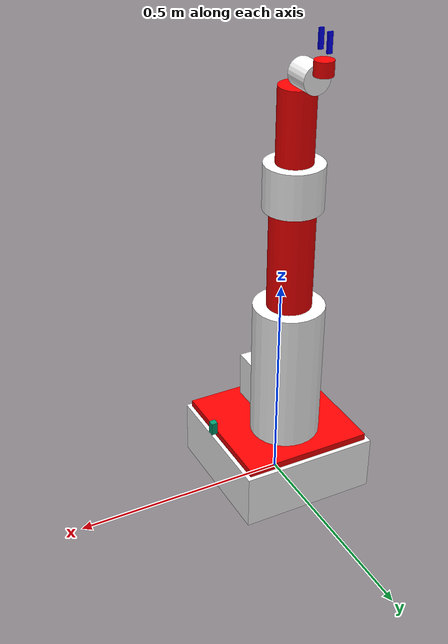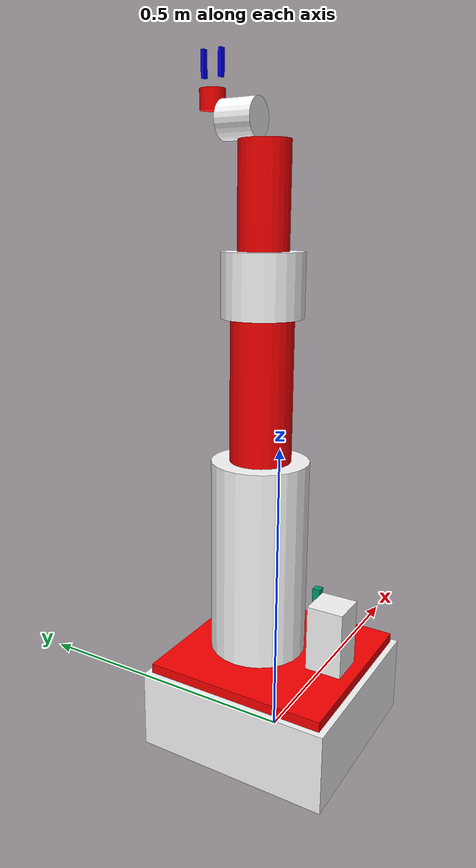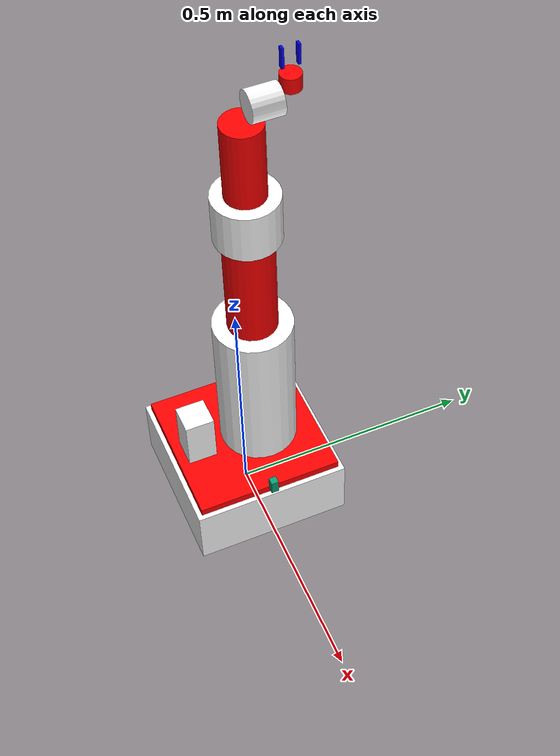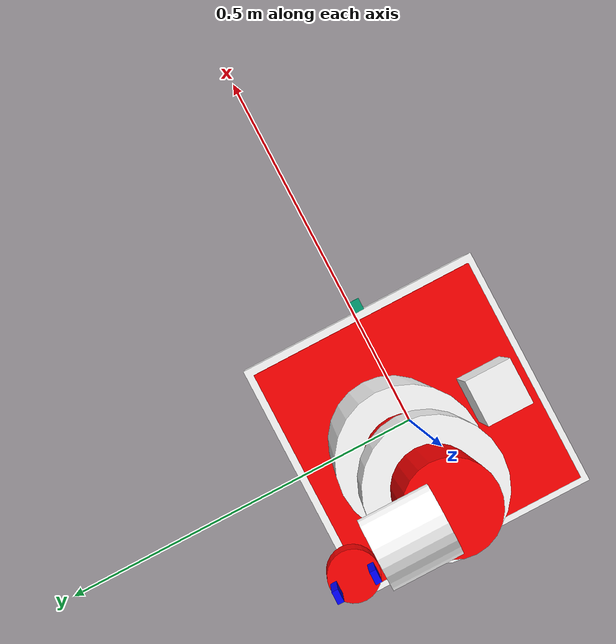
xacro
<?xml version="1.0"?>
<robot name="manipulator_model"
	xmlns:xacro="http://ros.org/wiki/xacro">

	<xacro:property name="M_PI" value="3.1415926" />
	<xacro:property name="H_PI" value="1.5707963" />

    <link name="base_link">
        <visual>
                <geometry>
                    <box size="1e-6 1e-6 1e-6"/>
                </geometry>
            <origin xyz="0 0 0" rpy="0 0 0"/>
            <material name="white">
                <color rgba="1 1 1 1"/>
            </material>
        </visual>
        <collision>
            <origin xyz="0 0 0" rpy="0 0 0"/>
            <geometry>
                    <box size="1e-6 1e-6 1e-6"/>
            </geometry>
        </collision>
        <inertial>
            <mass value="100"/>
            <inertia ixx="1.0" ixy="0.0" ixz="0.0" iyy="1.0" iyz="0.0" izz="1.0"/>
        </inertial>
    </link>

    <link name="base_ment_link">
        <visual>
                <geometry>
                    <box size="0.32 0.32 0.13"/>
                </geometry>
            <origin xyz="0 0 0" rpy="0 0 0"/>
            <material name="white">
                <color rgba="1 1 1 1"/>
            </material>
        </visual>
        <collision>
            <origin xyz="0 0 0" rpy="0 0 0"/>
            <geometry>
                    <box size="0.32 0.32 0.13"/>
            </geometry>
        </collision>
        <inertial>
            <mass value="10"/>
            <inertia ixx="1.0" ixy="0.0" ixz="0.0" iyy="1.0" iyz="0.0" izz="1.0"/>
        </inertial>
    </link>

    <joint name="base_link_to_base_ment_link_joint" type="fixed">
        <parent link="base_link"/>
        <child link="base_ment_link"/>
        <origin xyz="0 0 0.065" rpy="0 0 0"/>
    </joint>

    <link name="first_aix_base_link">
        <visual>
                <geometry>
                    <box size="0.3 0.3 0.016"/>
                </geometry>
            <origin xyz="0 0 0" rpy="0 0 0"/>
            <material name="red">
                <color rgba="1 0 0 1"/>
            </material>
        </visual>
        <collision>
            <origin xyz="0 0 0" rpy="0 0 0"/>
            <geometry>
                    <box size="0.3 0.3 0.016"/>
            </geometry>
        </collision>
        <inertial>
            <mass value="1"/>
            <inertia ixx="1.0" ixy="0.0" ixz="0.0" iyy="1.0" iyz="0.0" izz="1.0"/>
        </inertial>
    </link>

    <joint name="base_ment_link_to_first_aix_base_link_joint" type="fixed">
        <parent link="base_ment_link"/>
        <child link="first_aix_base_link"/>
        <origin xyz="0 0 0.073" rpy="0 0 0"/>
    </joint>

	<link name="motor_link">
        <visual>
                <geometry>
                    <box size="0.06 0.06 0.11"/>
                </geometry>
            <origin xyz="0 0 0" rpy="0 0 0"/>
            <material name="white">
                <color rgba="1 1 1 1"/>
            </material>
        </visual>
        <collision>
            <origin xyz="0 0 0" rpy="0 0 0"/>
            <geometry>
                    <box size="0.06 0.06 0.11"/>
            </geometry>
        </collision>
        <inertial>
            <mass value="0.1"/>
            <inertia ixx="1.0" ixy="0.0" ixz="0.0" iyy="1.0" iyz="0.0" izz="1.0"/>
        </inertial>
    </link>

    <joint name="motor_link_to_first_aix_base_link_joint" type="fixed">
        <parent link="first_aix_base_link"/>
        <child link="motor_link"/>
        <origin xyz="0 -0.1 0.063" rpy="0 0 0"/>
    </joint>

	<link name="first_aix_link">
        <visual>
                <geometry>
                    <cylinder length="0.33" radius="0.08"/>
                </geometry>
            <origin xyz="0 0 0" rpy="0 0 0"/>
            <material name="white">
                <color rgba="1 1 1 1"/>
            </material>
        </visual>
        <collision>
            <origin xyz="0 0 0" rpy="0 0 0"/>
            <geometry>
                    <cylinder length="0.33" radius="0.08"/>
            </geometry>
        </collision>
        <inertial>
            <mass value="0.1"/>
            <inertia ixx="1.0" ixy="0.0" ixz="0.0" iyy="1.0" iyz="0.0" izz="1.0"/>
        </inertial>
    </link>

    <joint name="first_aix_link_to_first_aix_base_link_joint" type="revolute">
        <parent link="first_aix_base_link"/>
        <child link="first_aix_link"/>
        <origin xyz="0 0.035 0.173" rpy="0 0 0"/>
		<axis xyz="0 0 1"/>
        <limit effort ="1000.0" lower="-3.14159" upper="3.14159" velocity="0.5"/>
    </joint>

	<link name="second_aix_link">
        <visual>
                <geometry>
                    <cylinder length="0.23" radius="0.05"/>
                </geometry>
            <origin xyz="0 0 0" rpy="0 0 0"/>
            <material name="red">
                <color rgba="1 0 0 1"/>
            </material>
        </visual>
        <collision>
            <origin xyz="0 0 0" rpy="0 0 0"/>
            <geometry>
                    <cylinder length="0.23" radius="0.05"/>
            </geometry>
        </collision>
        <inertial>
            <mass value="0.1"/>
            <inertia ixx="1.0" ixy="0.0" ixz="0.0" iyy="1.0" iyz="0.0" izz="1.0"/>
        </inertial>
    </link>

    <joint name="second_aix_link_to_first_aix_link_joint" type="revolute">
        <parent link="first_aix_link"/>
        <child link="second_aix_link"/>
        <origin xyz="0 0 0.28" rpy="0 0 0"/>
		<axis xyz="1 0 0"/>
        <limit effort ="1000.0" lower="-2.0071" upper="2.0071" velocity="0.5"/>
    </joint>

	<link name="third_aix_link">
        <visual>
                <geometry>
                    <cylinder length="0.1" radius="0.065"/>
                </geometry>
            <origin xyz="0 0 0" rpy="0 0 0"/>
            <material name="white">
                <color rgba="1 1 1 1"/>
            </material>
        </visual>
        <collision>
            <origin xyz="0 0 0" rpy="0 0 0"/>
            <geometry>
                    <cylinder length="0.1" radius="0.065"/>
            </geometry>
        </collision>
        <inertial>
            <mass value="0.1"/>
            <inertia ixx="1.0" ixy="0.0" ixz="0.0" iyy="1.0" iyz="0.0" izz="1.0"/>
        </inertial>
    </link>

    <joint name="third_aix_link_to_second_aix_link_joint" type="revolute">
        <parent link="second_aix_link"/>
        <child link="third_aix_link"/>
        <origin xyz="0 0 0.165" rpy="0 0 0"/>
		<axis xyz="1 0 0"/>
        <limit effort ="1000.0" lower="-2.2689" upper="2.2689" velocity="0.5"/>
    </joint>

	<link name="forth_aix_link">
        <visual>
                <geometry>
                    <cylinder length="0.16" radius="0.04"/>
                </geometry>
            <origin xyz="0 0 0" rpy="0 0 0"/>
            <material name="red">
                <color rgba="1 0 0 1"/>
            </material>
        </visual>
        <collision>
            <origin xyz="0 0 0" rpy="0 0 0"/>
            <geometry>
                    <cylinder length="0.16" radius="0.04"/>
            </geometry>
        </collision>
        <inertial>
            <mass value="0.1"/>
            <inertia ixx="1.0" ixy="0.0" ixz="0.0" iyy="1.0" iyz="0.0" izz="1.0"/>
        </inertial>
    </link>

    <joint name="forth_aix_link_to_third_aix_link_joint" type="revolute">
        <parent link="third_aix_link"/>
        <child link="forth_aix_link"/>
        <origin xyz="0 0 0.13" rpy="0 0 0"/>
		<axis xyz="0 0 1"/>
        <limit effort ="1000.0" lower="-3.14159" upper="3.14159" velocity="0.5"/>
    </joint>

	<link name="fifth_aix_link">
        <visual>
                <geometry>
                    <cylinder length="0.06" radius="0.03"/>
                </geometry>
            <origin xyz="0 0 0" rpy="0 0 0"/>
            <material name="white">
                <color rgba="1 1 1 1"/>
            </material>
        </visual>
        <collision>
            <origin xyz="0 0 0" rpy="0 0 0"/>
            <geometry>
                    <cylinder length="0.06" radius="0.03"/>
            </geometry>
        </collision>
        <inertial>
            <mass value="0.05"/>
            <inertia ixx="1.0" ixy="0.0" ixz="0.0" iyy="1.0" iyz="0.0" izz="1.0"/>
        </inertial>
    </link>

    <joint name="fifth_aix_link_to_forth_aix_link_joint" type="revolute">
        <parent link="forth_aix_link"/>
        <child link="fifth_aix_link"/>
        <origin xyz="0 0.04 0.11" rpy="-1.57 0 0"/>
		<axis xyz="0 0 1"/>
        <limit effort ="1000.0" lower="-3.14159" upper="3.14159" velocity="0.5"/>
    </joint>

	<link name="sixth_aix_link">
        <visual>
                <geometry>
                    <cylinder length="0.03" radius="0.02"/>
                </geometry>
            <origin xyz="0 0 0" rpy="0 0 0"/>
            <material name="red">
                <color rgba="1 0 0 1"/>
            </material>
        </visual>
        <collision>
            <origin xyz="0 0 0" rpy="0 0 0"/>
            <geometry>
                    <cylinder length="0.03" radius="0.02"/>
            </geometry>
        </collision>
        <inertial>
            <mass value="0.05"/>
            <inertia ixx="1.0" ixy="0.0" ixz="0.0" iyy="1.0" iyz="0.0" izz="1.0"/>
        </inertial>
    </link>

    <joint name="sixth_aix_link_to_fifth_aix_link_joint" type="revolute">
        <parent link="fifth_aix_link"/>
        <child link="sixth_aix_link"/>
        <origin xyz="0 -0.03 0.05" rpy="1.57 0 0"/>
		<axis xyz="0 0 1"/>
        <limit effort ="1000.0" lower="-3.14159" upper="3.14159" velocity="0.5"/>
    </joint>

    <gazebo>
        <plugin name="gazebo_ros_control" filename="libgazebo_ros_control.so" />
        <plugin name="joint_state_publisher" filename="libgazebo_ros_joint_state_publisher.so">
            <jointName>first_aix_link_to_first_aix_base_link_joint,second_aix_link_to_first_aix_link_joint,third_aix_link_to_second_aix_link_joint,forth_aix_link_to_third_aix_link_joint,fifth_aix_link_to_forth_aix_link_joint,sixth_aix_link_to_fifth_aix_link_joint</jointName>
        </plugin>
    </gazebo>

    <transmission name="first">
        <type>transmission_interface/SimpleTransmission</type>
        <joint name="first_aix_link_to_first_aix_base_link_joint">
            <hardwareInterface>PositionJointInterface</hardwareInterface>
        </joint>
        <actuator name="motor0">
            <hardwareInterface>PositionJointInterface</hardwareInterface>
            <mechanicalReduction>1</mechanicalReduction>
        </actuator>
    </transmission>

    <transmission name="second">
        <type>transmission_interface/SimpleTransmission</type>
        <joint name="second_aix_link_to_first_aix_link_joint">
            <hardwareInterface>PositionJointInterface</hardwareInterface>
        </joint>
        <actuator name="motor1">
            <hardwareInterface>PositionJointInterface</hardwareInterface>
            <mechanicalReduction>1</mechanicalReduction>
        </actuator>
    </transmission>

    <transmission name="third">
        <type>transmission_interface/SimpleTransmission</type>
        <joint name="third_aix_link_to_second_aix_link_joint">
            <hardwareInterface>PositionJointInterface</hardwareInterface>
        </joint>
        <actuator name="motor2">
            <hardwareInterface>PositionJointInterface</hardwareInterface>
            <mechanicalReduction>1</mechanicalReduction>
        </actuator>
    </transmission>

    <transmission name="forth">
        <type>transmission_interface/SimpleTransmission</type>
        <joint name="forth_aix_link_to_third_aix_link_joint">
            <hardwareInterface>PositionJointInterface</hardwareInterface>
        </joint>
        <actuator name="motor3">
            <hardwareInterface>PositionJointInterface</hardwareInterface>
            <mechanicalReduction>1</mechanicalReduction>
        </actuator>
    </transmission>

    <transmission name="fifth">
        <type>transmission_interface/SimpleTransmission</type>
        <joint name="fifth_aix_link_to_forth_aix_link_joint">
            <hardwareInterface>PositionJointInterface</hardwareInterface>
        </joint>
        <actuator name="motor4">
            <hardwareInterface>PositionJointInterface</hardwareInterface>
            <mechanicalReduction>1</mechanicalReduction>
        </actuator>
    </transmission>

    <transmission name="sixth">
        <type>transmission_interface/SimpleTransmission</type>
        <joint name="sixth_aix_link_to_fifth_aix_link_joint">
            <hardwareInterface>PositionJointInterface</hardwareInterface>
        </joint>
        <actuator name="motor5">
            <hardwareInterface>PositionJointInterface</hardwareInterface>
            <mechanicalReduction>1</mechanicalReduction>
        </actuator>
    </transmission>

    <link name="laser_link">
        <collision>
            <origin xyz="0 0 0" rpy="0 0 0" />
            <geometry>
                <box size="0.015 0.015 0.03" />
            </geometry>
        </collision>
        <visual>
            <origin xyz="0 0 0" rpy="0 0 0" />
            <geometry>
                <box size="0.015 0.015 0.03" />
            </geometry>
        </visual>
        <inertial>
            <mass value="1e-5" />
            <origin xyz="0.02 0 0" rpy="0 0 0" />
            <inertia ixx="1e-6" ixy="0" ixz="0" iyy="1e6" iyz="0" izz="1e-6" />
        </inertial>
    </link>

    <joint name="laser_joint" type="fixed">
        <origin xyz="0.1675 0 0.108" rpy=" 0 0 0" />
        <parent link="base_ment_link" />
        <child link="laser_link" />
    </joint>

    <gazebo reference="laser_link">
        <sensor name= "hokuyo" type="gpu_ray">
            <pose>0 0 0 0 0 0</pose>
            <visualize>false</visualize>
            <update_rate>10</update_rate>
            <ray>
                <scan>
                    <horizontal>
                        <samples>720</samples>
                        <resolution>1</resolution>
                        <min_angle>-1.570796</min_angle>
                        <max_angle>1.570796</max_angle>
                    </horizontal>
                </scan>
                <range>
                    <min>0.01</min>
                    <max>30.0</max>
                    <resolution>0.01</resolution>
                </range>
            </ray>
            <plugin name="gpu_laser" filename="libgazebo_ros_gpu_laser.so">
                <topicName>/manipulator_scan</topicName>
                <frameName>/manipulator_laser</frameName>
            </plugin>
        </sensor>
    </gazebo>

    <link name="grip_base_link">
        <visual>
                <geometry>
                    <box size="1e-6 1e-6 1e-6"/>
                </geometry>
            <origin xyz="0 0 0" rpy="0 0 0"/>
            <material name="blue">
                <color rgba="0 0 1 1"/>
            </material>
        </visual>
        <collision>
            <origin xyz="0 0 0" rpy="0 0 0"/>
            <geometry>
                    <box size="1e-6 1e-6 1e-6"/>
            </geometry>
        </collision>
        <inertial>
            <mass value="0.05"/>
            <inertia ixx="1.0" ixy="0.0" ixz="0.0" iyy="1.0" iyz="0.0" izz="1.0"/>
        </inertial>
    </link>

    <joint name="grip_base_link_to_sixth_aix_link_joint" type="fixed">
        <parent link="sixth_aix_link"/>
        <child link="grip_base_link"/>
        <origin xyz="0 0 0.025" rpy="0 -1.57 0"/>
    </joint>

    <link name="grip_left_link">
        <visual>
                <geometry>
                    <box size="0.04 0.005 0.01"/>
                </geometry>
            <origin xyz="0 0 0" rpy="0 0 0"/>
            <material name="blue">
                <color rgba="0 0 1 1"/>
            </material>
        </visual>
        <collision>
            <origin xyz="0 0 0" rpy="0 0 0"/>
            <geometry>
                    <box size="0.04 0.005 0.01"/>
            </geometry>
        </collision>
        <inertial>
            <mass value="0.05"/>
            <inertia ixx="1.0" ixy="0.0" ixz="0.0" iyy="1.0" iyz="0.0" izz="1.0"/>
        </inertial>
    </link>

    <joint name="grip_left_link_to_grip_base_link_joint" type="prismatic">
        <parent link="grip_base_link"/>
        <child link="grip_left_link"/>
        <origin xyz="0.025 0.015 0" rpy="0 0 0"/>
        <axis xyz="0 1 0"/>
        <limit effort ="1000.0" lower="-0.01" upper="0" velocity="0.5"/>
    </joint>

    <link name="grip_right_link">
        <visual>
                <geometry>
                    <box size="0.04 0.005 0.01"/>
                </geometry>
            <origin xyz="0 0 0" rpy="0 0 0"/>
            <material name="blue">
                <color rgba="0 0 1 1"/>
            </material>
        </visual>
        <collision>
            <origin xyz="0 0 0" rpy="0 0 0"/>
            <geometry>
                    <box size="0.04 0.005 0.01"/>
            </geometry>
        </collision>
        <inertial>
            <mass value="0.05"/>
            <inertia ixx="1.0" ixy="0.0" ixz="0.0" iyy="1.0" iyz="0.0" izz="1.0"/>
        </inertial>
    </link>

    <joint name="grip_right_link_to_grip_base_link_joint" type="prismatic">
        <parent link="grip_base_link"/>
        <child link="grip_right_link"/>
        <origin xyz="0.025 -0.015 0" rpy="0 0 0"/>
        <axis xyz="0 1 0"/>
        <limit effort ="1000.0" lower="0" upper="0.01" velocity="0.5"/>
    </joint>
</robot>
